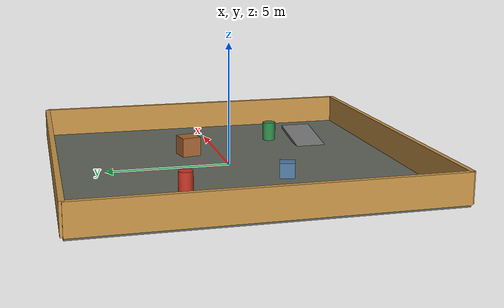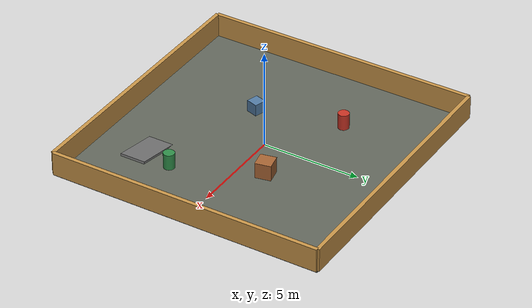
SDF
<?xml version="1.0"?>
<sdf version="1.6">
  <world name="rescue_arena">
    <physics type="ode">
      <max_step_size>0.001</max_step_size>
      <real_time_factor>1.0</real_time_factor>
      <real_time_update_rate>1000</real_time_update_rate>
      <ode>
        <solver>
          <type>quick</type>
          <iters>50</iters>
          <sor>1.3</sor>
        </solver>
      </ode>
    </physics>
    <gravity>0 0 -9.81</gravity>

    <scene>
      <ambient>0.45 0.45 0.45 1</ambient>
      <background>0.18 0.25 0.35 1</background>
      <shadows>true</shadows>
    </scene>

    <gui fullscreen="0">
      <camera name="main_camera">
        <pose>-4.5 -4.5 3.2 0 0.35 0.78</pose>
      </camera>
    </gui>

    <light type="directional" name="sun">
      <cast_shadows>true</cast_shadows>
      <pose>0 0 10 0 0 0</pose>
      <diffuse>0.9 0.9 0.9 1</diffuse>
      <specular>0.2 0.2 0.2 1</specular>
      <attenuation>
        <range>1000</range>
        <constant>0.9</constant>
        <linear>0.01</linear>
        <quadratic>0.001</quadratic>
      </attenuation>
      <direction>-0.5 0.3 -0.8</direction>
    </light>

    <model name="arena_floor">
      <static>true</static>
      <link name="floor_link">
        <collision name="floor_collision">
          <geometry>
            <box>
              <size>14 14 0.1</size>
            </box>
          </geometry>
          <surface>
            <friction>
              <ode>
                <mu>1.0</mu>
                <mu2>1.0</mu2>
              </ode>
            </friction>
          </surface>
        </collision>
        <visual name="floor_visual">
          <geometry>
            <box>
              <size>14 14 0.1</size>
            </box>
          </geometry>
          <material>
            <ambient>0.32 0.35 0.32 1</ambient>
            <diffuse>0.38 0.40 0.36 1</diffuse>
          </material>
        </visual>
      </link>
      <pose>0 0 -0.05 0 0 0</pose>
    </model>

    <model name="arena_wall_north">
      <static>true</static>
      <link name="wall_link">
        <collision name="wall_collision">
          <geometry><box><size>14 0.2 1.2</size></box></geometry>
        </collision>
        <visual name="wall_visual">
          <geometry><box><size>14 0.2 1.2</size></box></geometry>
          <material><ambient>0.72 0.55 0.26 1</ambient><diffuse>0.78 0.58 0.28 1</diffuse></material>
        </visual>
      </link>
      <pose>0 7 0.6 0 0 0</pose>
    </model>

    <model name="arena_wall_south">
      <static>true</static>
      <link name="wall_link">
        <collision name="wall_collision">
          <geometry><box><size>14 0.2 1.2</size></box></geometry>
        </collision>
        <visual name="wall_visual">
          <geometry><box><size>14 0.2 1.2</size></box></geometry>
          <material><ambient>0.72 0.55 0.26 1</ambient><diffuse>0.78 0.58 0.28 1</diffuse></material>
        </visual>
      </link>
      <pose>0 -7 0.6 0 0 0</pose>
    </model>

    <model name="arena_wall_east">
      <static>true</static>
      <link name="wall_link">
        <collision name="wall_collision">
          <geometry><box><size>0.2 14 1.2</size></box></geometry>
        </collision>
        <visual name="wall_visual">
          <geometry><box><size>0.2 14 1.2</size></box></geometry>
          <material><ambient>0.72 0.55 0.26 1</ambient><diffuse>0.78 0.58 0.28 1</diffuse></material>
        </visual>
      </link>
      <pose>7 0 0.6 0 0 0</pose>
    </model>

    <model name="arena_wall_west">
      <static>true</static>
      <link name="wall_link">
        <collision name="wall_collision">
          <geometry><box><size>0.2 14 1.2</size></box></geometry>
        </collision>
        <visual name="wall_visual">
          <geometry><box><size>0.2 14 1.2</size></box></geometry>
          <material><ambient>0.72 0.55 0.26 1</ambient><diffuse>0.78 0.58 0.28 1</diffuse></material>
        </visual>
      </link>
      <pose>-7 0 0.6 0 0 0</pose>
    </model>

    <model name="crate_alpha">
      <static>true</static>
      <link name="crate_link">
        <collision name="crate_collision"><geometry><box><size>0.8 0.8 0.8</size></box></geometry></collision>
        <visual name="crate_visual">
          <geometry><box><size>0.8 0.8 0.8</size></box></geometry>
          <material><ambient>0.55 0.33 0.18 1</ambient><diffuse>0.65 0.39 0.20 1</diffuse></material>
        </visual>
      </link>
      <pose>2.0 1.3 0.4 0 0 0.2</pose>
    </model>

    <model name="crate_beta">
      <static>true</static>
      <link name="crate_link">
        <collision name="crate_collision"><geometry><box><size>0.6 0.6 0.6</size></box></geometry></collision>
        <visual name="crate_visual">
          <geometry><box><size>0.6 0.6 0.6</size></box></geometry>
          <material><ambient>0.28 0.42 0.55 1</ambient><diffuse>0.32 0.48 0.64 1</diffuse></material>
        </visual>
      </link>
      <pose>-2.2 -1.8 0.3 0 0 -0.3</pose>
    </model>

    <model name="barrel_one">
      <static>true</static>
      <link name="barrel_link">
        <collision name="barrel_collision"><geometry><cylinder><radius>0.28</radius><length>0.8</length></cylinder></geometry></collision>
        <visual name="barrel_visual">
          <geometry><cylinder><radius>0.28</radius><length>0.8</length></cylinder></geometry>
          <material><ambient>0.65 0.16 0.12 1</ambient><diffuse>0.78 0.20 0.14 1</diffuse></material>
        </visual>
      </link>
      <pose>-3.2 2.4 0.4 0 0 0</pose>
    </model>

    <model name="barrel_two">
      <static>true</static>
      <link name="barrel_link">
        <collision name="barrel_collision"><geometry><cylinder><radius>0.28</radius><length>0.8</length></cylinder></geometry></collision>
        <visual name="barrel_visual">
          <geometry><cylinder><radius>0.28</radius><length>0.8</length></cylinder></geometry>
          <material><ambient>0.15 0.42 0.23 1</ambient><diffuse>0.18 0.55 0.28 1</diffuse></material>
        </visual>
      </link>
      <pose>3.8 -2.8 0.4 0 0 0</pose>
    </model>

    <model name="rescue_ramp">
      <static>true</static>
      <link name="ramp_link">
        <collision name="ramp_collision"><geometry><box><size>2.4 1.3 0.12</size></box></geometry></collision>
        <visual name="ramp_visual">
          <geometry><box><size>2.4 1.3 0.12</size></box></geometry>
          <material><ambient>0.35 0.35 0.35 1</ambient><diffuse>0.45 0.45 0.45 1</diffuse></material>
        </visual>
      </link>
      <pose>3.4 -4.3 0.156 0 -0.18 0</pose>
    </model>
  </world>
</sdf>
